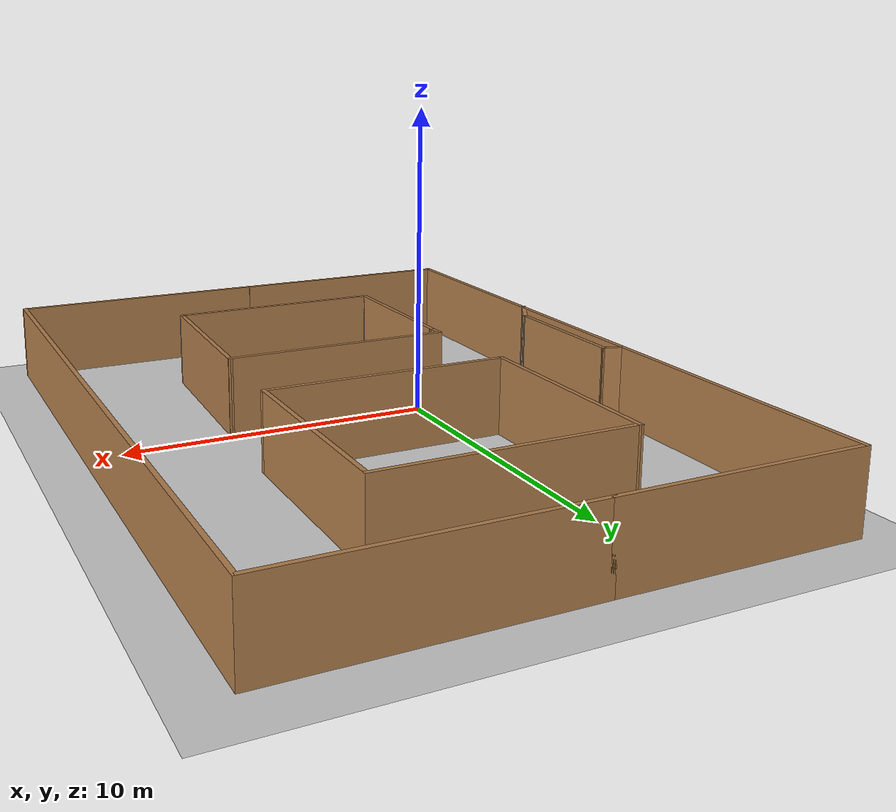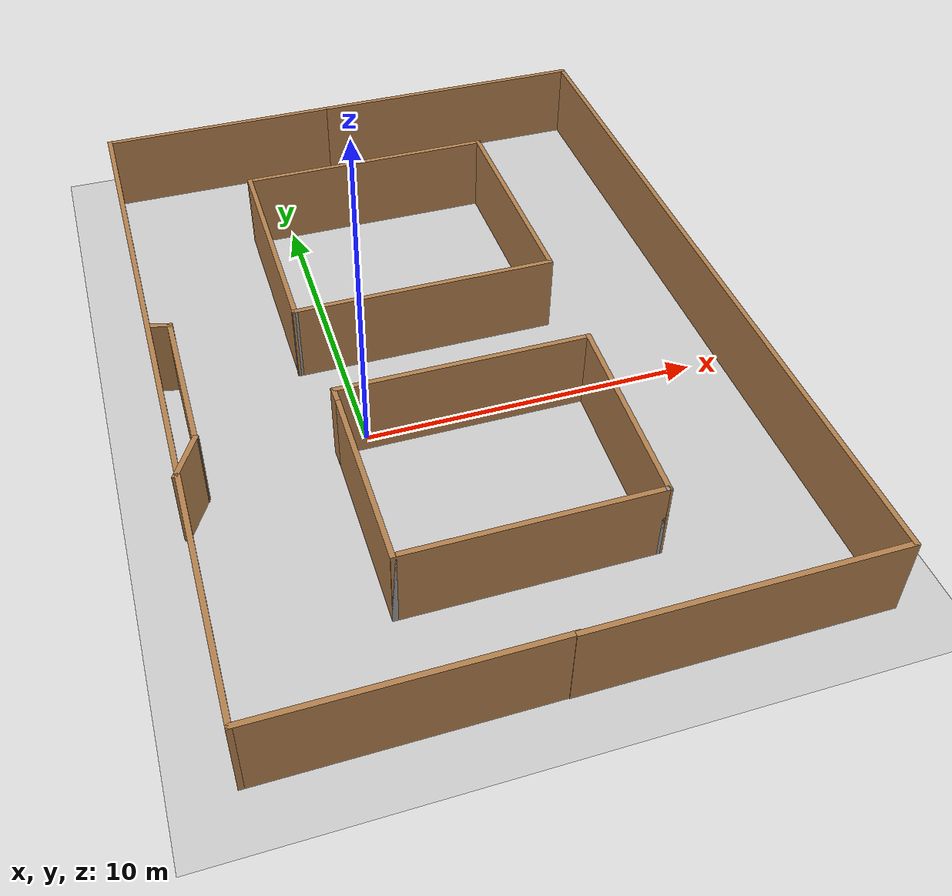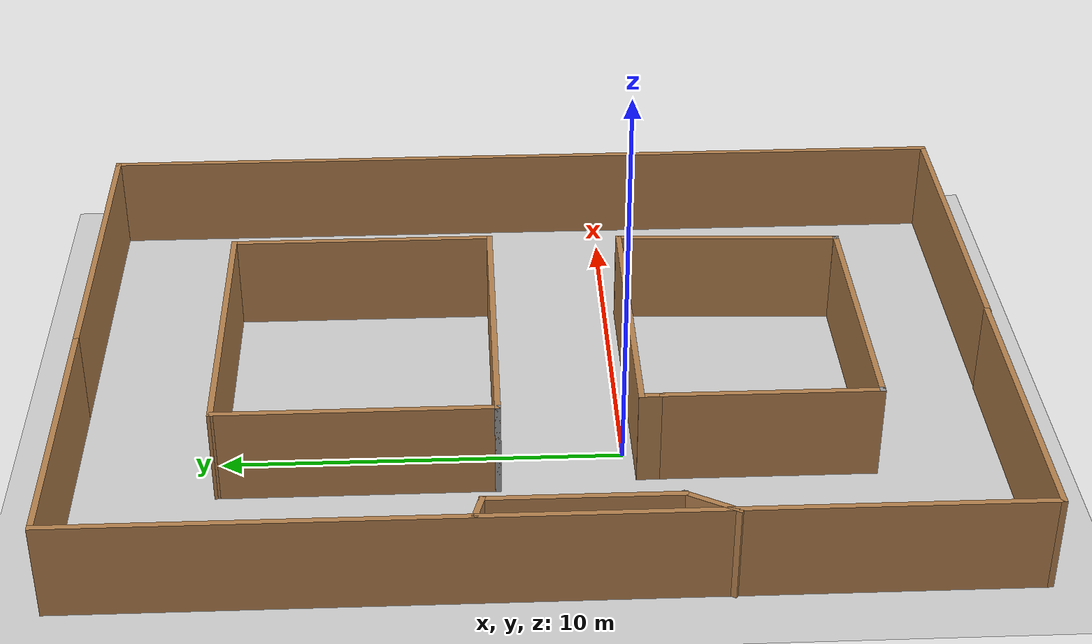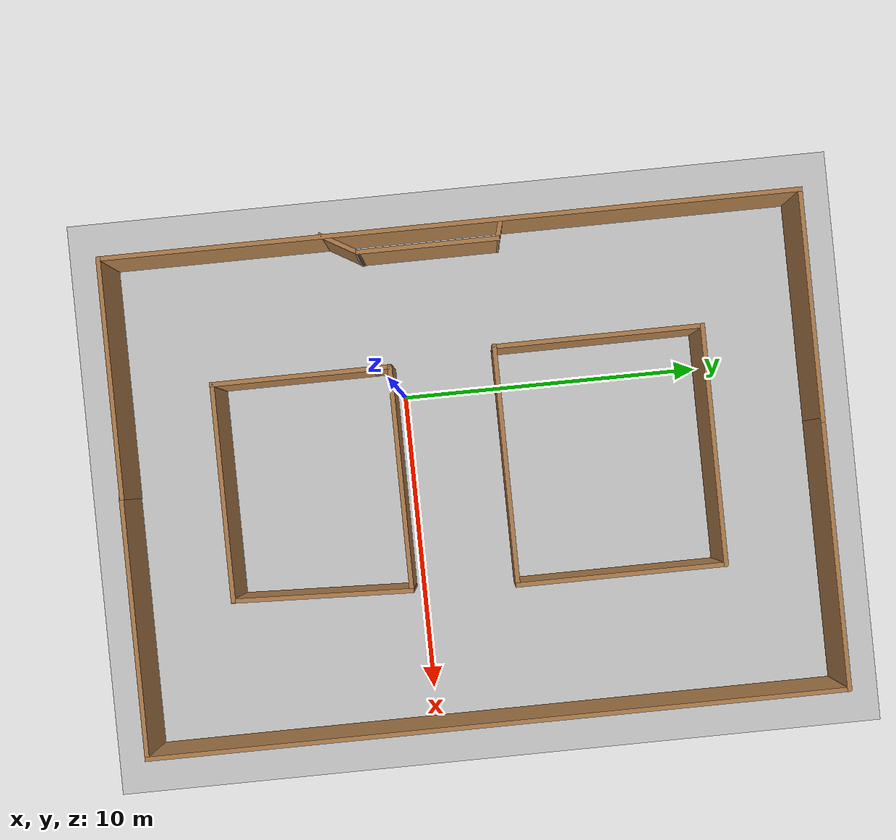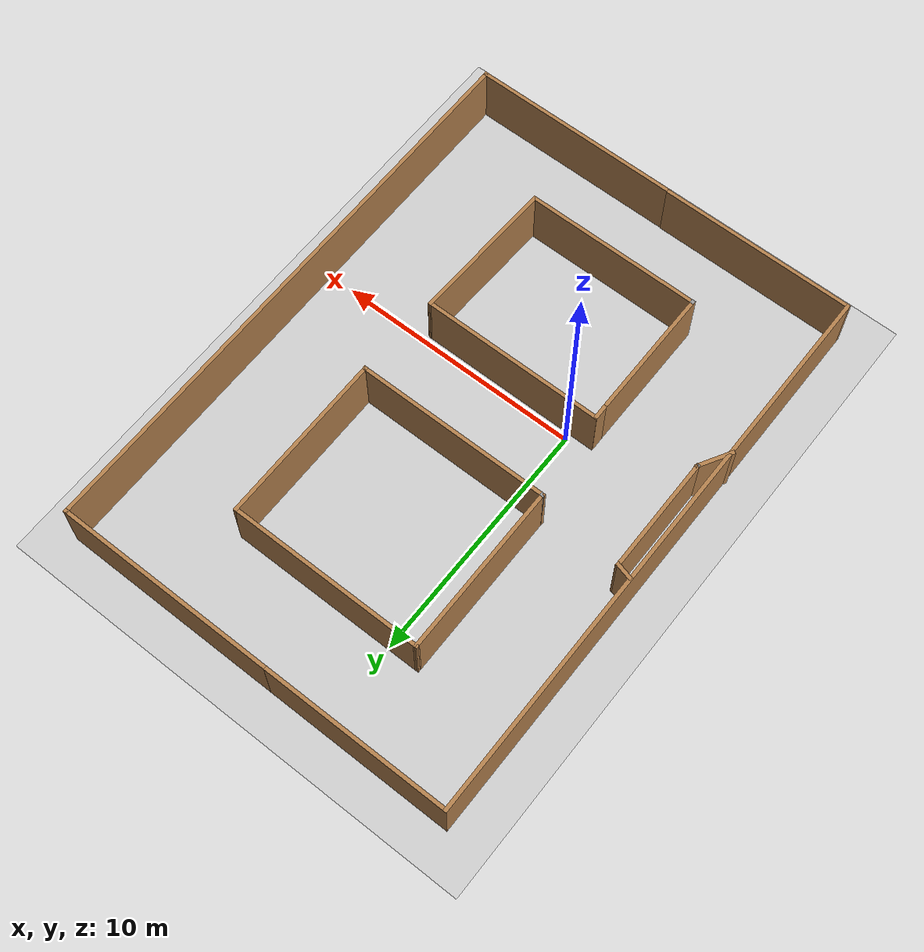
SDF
<sdf version='1.4'>
  <world name='default'>
    <!-- A global light source -->
    <include>
      <uri>model://sun</uri>
    </include>

    <!-- A ground plane -->
    <include>
      <uri>model://ground_plane</uri>
    </include>

    <physics type="ode">
      <real_time_update_rate>1000.0</real_time_update_rate>
      <max_step_size>0.001</max_step_size>
      <real_time_factor>1</real_time_factor>
      <ode>
        <solver>
          <type>quick</type>
          <iters>150</iters>
          <precon_iters>0</precon_iters>
          <sor>1.400000</sor>
          <use_dynamic_moi_rescaling>1</use_dynamic_moi_rescaling>
        </solver>
        <constraints>
          <cfm>0.00001</cfm>
          <erp>0.2</erp>
          <contact_max_correcting_vel>2000.000000</contact_max_correcting_vel>
          <contact_surface_layer>0.01000</contact_surface_layer>
        </constraints>
      </ode>
    </physics>

    <!-- Load world -->
    <include>
      <uri>model://double_wall</uri>
    </include>

    <scene>
      <ambient>0.4 0.4 0.4 1</ambient>
      <background>0.7 0.7 0.7 1</background>
      <shadows>true</shadows>
    </scene>

    <gui fullscreen='0'>
      <camera name='user_camera'>
        <pose>0.8 0.0 12.0 0 1.5708 0</pose>
        <view_controller>orbit</view_controller>
      </camera>
    </gui>
  </world>
</sdf>

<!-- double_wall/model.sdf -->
<sdf version='1.7'>
  <model name='double_wall'>
    <pose>2.8105 2.06376 0 0 -0 0</pose>
    <link name='Wall_10'>
      <collision name='Wall_10_Collision'>
        <geometry>
          <box>
            <size>8 0.15 2.5</size>
          </box>
        </geometry>
        <pose>0 0 1.25 0 -0 0</pose>
      </collision>
      <visual name='Wall_10_Visual'>
        <pose>0 0 1.25 0 -0 0</pose>
        <geometry>
          <box>
            <size>8 0.15 2.5</size>
          </box>
        </geometry>
        <material>
          <script>
            <uri>file://media/materials/scripts/gazebo.material</uri>
            <name>Gazebo/Wood</name>
          </script>
          <ambient>1 1 1 1</ambient>
        </material>
        <meta>
          <layer>0</layer>
        </meta>
      </visual>
      <pose>-0.13531 7.94023 0 0 -0 0</pose>
    </link>
    <link name='Wall_11'>
      <collision name='Wall_11_Collision'>
        <geometry>
          <box>
            <size>7 0.15 2.5</size>
          </box>
        </geometry>
        <pose>0 0 1.25 0 -0 0</pose>
      </collision>
      <visual name='Wall_11_Visual'>
        <pose>0 0 1.25 0 -0 0</pose>
        <geometry>
          <box>
            <size>7 0.15 2.5</size>
          </box>
        </geometry>
        <material>
          <script>
            <uri>file://media/materials/scripts/gazebo.material</uri>
            <name>Gazebo/Wood</name>
          </script>
          <ambient>1 1 1 1</ambient>
        </material>
        <meta>
          <layer>0</layer>
        </meta>
      </visual>
      <pose>3.78969 4.51523 0 0 -0 -1.5708</pose>
    </link>
    <link name='Wall_12'>
      <collision name='Wall_12_Collision'>
        <geometry>
          <box>
            <size>8 0.15 2.5</size>
          </box>
        </geometry>
        <pose>0 0 1.25 0 -0 0</pose>
      </collision>
      <visual name='Wall_12_Visual'>
        <pose>0 0 1.25 0 -0 0</pose>
        <geometry>
          <box>
            <size>8 0.15 2.5</size>
          </box>
        </geometry>
        <material>
          <script>
            <uri>file://media/materials/scripts/gazebo.material</uri>
            <name>Gazebo/Wood</name>
          </script>
          <ambient>1 1 1 1</ambient>
        </material>
        <meta>
          <layer>0</layer>
        </meta>
      </visual>
      <pose>-0.13531 1.09023 0 0 -0 3.14159</pose>
    </link>
    <link name='Wall_13'>
      <collision name='Wall_13_Collision'>
        <geometry>
          <box>
            <size>0.16 0.15 2.5</size>
          </box>
        </geometry>
        <pose>0 0 1.25 0 -0 0</pose>
      </collision>
      <visual name='Wall_13_Visual'>
        <pose>0 0 1.25 0 -0 0</pose>
        <geometry>
          <box>
            <size>0.16 0.15 2.5</size>
          </box>
        </geometry>
        <material>
          <script>
            <uri>file://media/materials/scripts/gazebo.material</uri>
            <name>Gazebo/Grey</name>
          </script>
          <ambient>1 1 1 1</ambient>
        </material>
        <meta>
          <layer>0</layer>
        </meta>
      </visual>
      <pose>-4.05531 1.09023 0 0 -0 0</pose>
    </link>
    <link name='Wall_14'>
      <collision name='Wall_14_Collision'>
        <geometry>
          <box>
            <size>7.00001 0.15 2.5</size>
          </box>
        </geometry>
        <pose>0 0 1.25 0 -0 0</pose>
      </collision>
      <visual name='Wall_14_Visual'>
        <pose>0 0 1.25 0 -0 0</pose>
        <geometry>
          <box>
            <size>7.00001 0.15 2.5</size>
          </box>
        </geometry>
        <material>
          <script>
            <uri>file://media/materials/scripts/gazebo.material</uri>
            <name>Gazebo/Wood</name>
          </script>
          <ambient>1 1 1 1</ambient>
        </material>
        <meta>
          <layer>0</layer>
        </meta>
      </visual>
      <pose>-4.05531 4.51523 0 0 -0 1.57226</pose>
    </link>
    <link name='Wall_16'>
      <collision name='Wall_16_Collision'>
        <geometry>
          <box>
            <size>0.6501 0.15 2.5</size>
          </box>
        </geometry>
        <pose>0 0 1.25 0 -0 0</pose>
      </collision>
      <visual name='Wall_16_Visual'>
        <pose>0 0 1.25 0 -0 0</pose>
        <geometry>
          <box>
            <size>0.6501 0.15 2.5</size>
          </box>
        </geometry>
        <material>
          <script>
            <uri>file://media/materials/scripts/gazebo.material</uri>
            <name>Gazebo/Wood</name>
          </script>
          <ambient>1 1 1 1</ambient>
        </material>
        <meta>
          <layer>0</layer>
        </meta>
      </visual>
      <pose>-3.73247 -2.64058 0 0 -0 -1.5508</pose>
    </link>
    <link name='Wall_17'>
      <collision name='Wall_17_Collision'>
        <geometry>
          <box>
            <size>5.5 0.15 2.5</size>
          </box>
        </geometry>
        <pose>0 0 1.25 0 -0 0</pose>
      </collision>
      <visual name='Wall_17_Visual'>
        <pose>0 0 1.25 0 -0 0</pose>
        <geometry>
          <box>
            <size>5.5 0.15 2.5</size>
          </box>
        </geometry>
        <material>
          <script>
            <uri>file://media/materials/scripts/gazebo.material</uri>
            <name>Gazebo/Wood</name>
          </script>
          <ambient>1 1 1 1</ambient>
        </material>
        <meta>
          <layer>0</layer>
        </meta>
      </visual>
      <pose>-3.72747 -5.56558 0 0 -0 -1.5708</pose>
    </link>
    <link name='Wall_18'>
      <collision name='Wall_18_Collision'>
        <geometry>
          <box>
            <size>0.16 0.15 2.5</size>
          </box>
        </geometry>
        <pose>0 0 1.25 0 -0 0</pose>
      </collision>
      <visual name='Wall_18_Visual'>
        <pose>0 0 1.25 0 -0 0</pose>
        <geometry>
          <box>
            <size>0.16 0.15 2.5</size>
          </box>
        </geometry>
        <material>
          <script>
            <uri>file://media/materials/scripts/gazebo.material</uri>
            <name>Gazebo/Grey</name>
          </script>
          <ambient>1 1 1 1</ambient>
        </material>
        <meta>
          <layer>0</layer>
        </meta>
      </visual>
      <pose>-3.72247 -8.24058 0 0 -0 0</pose>
    </link>
    <link name='Wall_19'>
      <collision name='Wall_19_Collision'>
        <geometry>
          <box>
            <size>7.25 0.15 2.5</size>
          </box>
        </geometry>
        <pose>0 0 1.25 0 -0 0</pose>
      </collision>
      <visual name='Wall_19_Visual'>
        <pose>0 0 1.25 0 -0 0</pose>
        <geometry>
          <box>
            <size>7.25 0.15 2.5</size>
          </box>
        </geometry>
        <material>
          <script>
            <uri>file://media/materials/scripts/gazebo.material</uri>
            <name>Gazebo/Wood</name>
          </script>
          <ambient>1 1 1 1</ambient>
        </material>
        <meta>
          <layer>0</layer>
        </meta>
      </visual>
      <pose>-0.167472 -8.24058 0 0 -0 0</pose>
    </link>
    <link name='Wall_2'>
      <collision name='Wall_2_Collision'>
        <geometry>
          <box>
            <size>8 0.15 2.5</size>
          </box>
        </geometry>
        <pose>0 0 1.25 0 -0 0</pose>
      </collision>
      <visual name='Wall_2_Visual'>
        <pose>0 0 1.25 0 -0 0</pose>
        <geometry>
          <box>
            <size>8 0.15 2.5</size>
          </box>
        </geometry>
        <material>
          <script>
            <uri>file://media/materials/scripts/gazebo.material</uri>
            <name>Gazebo/Wood</name>
          </script>
          <ambient>1 1 1 1</ambient>
        </material>
        <meta>
          <layer>0</layer>
        </meta>
      </visual>
      <pose>-4.26251 -11.5412 0 0 -0 3.14159</pose>
    </link>
    <link name='Wall_20'>
      <collision name='Wall_20_Collision'>
        <geometry>
          <box>
            <size>0.16 0.15 2.5</size>
          </box>
        </geometry>
        <pose>0 0 1.25 0 -0 0</pose>
      </collision>
      <visual name='Wall_20_Visual'>
        <pose>0 0 1.25 0 -0 0</pose>
        <geometry>
          <box>
            <size>0.16 0.15 2.5</size>
          </box>
        </geometry>
        <material>
          <script>
            <uri>file://media/materials/scripts/gazebo.material</uri>
            <name>Gazebo/Grey</name>
          </script>
          <ambient>1 1 1 1</ambient>
        </material>
        <meta>
          <layer>0</layer>
        </meta>
      </visual>
      <pose>3.38753 -8.24058 0 0 -0 0</pose>
    </link>
    <link name='Wall_21'>
      <collision name='Wall_21_Collision'>
        <geometry>
          <box>
            <size>6.00621 0.15 2.5</size>
          </box>
        </geometry>
        <pose>0 0 1.25 0 -0 0</pose>
      </collision>
      <visual name='Wall_21_Visual'>
        <pose>0 0 1.25 0 -0 0</pose>
        <geometry>
          <box>
            <size>6.00621 0.15 2.5</size>
          </box>
        </geometry>
        <material>
          <script>
            <uri>file://media/materials/scripts/gazebo.material</uri>
            <name>Gazebo/Wood</name>
          </script>
          <ambient>1 1 1 1</ambient>
        </material>
        <meta>
          <layer>0</layer>
        </meta>
      </visual>
      <pose>3.50992 -5.31449 0 0 -0 1.5307</pose>
    </link>
    <link name='Wall_22'>
      <collision name='Wall_22_Collision'>
        <geometry>
          <box>
            <size>7.5 0.15 2.5</size>
          </box>
        </geometry>
        <pose>0 0 1.25 0 -0 0</pose>
      </collision>
      <visual name='Wall_22_Visual'>
        <pose>0 0 1.25 0 -0 0</pose>
        <geometry>
          <box>
            <size>7.5 0.15 2.5</size>
          </box>
        </geometry>
        <material>
          <script>
            <uri>file://media/materials/scripts/gazebo.material</uri>
            <name>Gazebo/Wood</name>
          </script>
          <ambient>1 1 1 1</ambient>
        </material>
        <meta>
          <layer>0</layer>
        </meta>
      </visual>
      <pose>-0.056385 -2.38841 0 0 -0 3.14159</pose>
    </link>
    <link name='Wall_24'>
      <collision name='Wall_24_Collision'>
        <geometry>
          <box>
            <size>0.75 0.15 2.5</size>
          </box>
        </geometry>
        <pose>0 0 1.25 0 -0 0</pose>
      </collision>
      <visual name='Wall_24_Visual'>
        <pose>0 0 1.25 0 -0 0</pose>
        <geometry>
          <box>
            <size>0.75 0.15 2.5</size>
          </box>
        </geometry>
        <material>
          <script>
            <uri>file://media/materials/scripts/gazebo.material</uri>
            <name>Gazebo/Wood</name>
          </script>
          <ambient>1 1 1 1</ambient>
        </material>
        <meta>
          <layer>0</layer>
        </meta>
      </visual>
      <pose>-7.85981 1.62105 0 0 -0 -0.261799</pose>
    </link>
    <link name='Wall_25'>
      <collision name='Wall_25_Collision'>
        <geometry>
          <box>
            <size>4.75 0.15 2.5</size>
          </box>
        </geometry>
        <pose>0 0 1.25 0 -0 0</pose>
      </collision>
      <visual name='Wall_25_Visual'>
        <pose>0 0 1.25 0 -0 0</pose>
        <geometry>
          <box>
            <size>4.75 0.15 2.5</size>
          </box>
        </geometry>
        <material>
          <script>
            <uri>file://media/materials/scripts/gazebo.material</uri>
            <name>Gazebo/Wood</name>
          </script>
          <ambient>1 1 1 1</ambient>
        </material>
        <meta>
          <layer>0</layer>
        </meta>
      </visual>
      <pose>-7.57003 -0.756593 0 0 -0 -1.5708</pose>
    </link>
    <link name='Wall_26'>
      <collision name='Wall_26_Collision'>
        <geometry>
          <box>
            <size>0.16 0.15 2.5</size>
          </box>
        </geometry>
        <pose>0 0 1.25 0 -0 0</pose>
      </collision>
      <visual name='Wall_26_Visual'>
        <pose>0 0 1.25 0 -0 0</pose>
        <geometry>
          <box>
            <size>0.16 0.15 2.5</size>
          </box>
        </geometry>
        <material>
          <script>
            <uri>file://media/materials/scripts/gazebo.material</uri>
            <name>Gazebo/Grey</name>
          </script>
          <ambient>1 1 1 1</ambient>
        </material>
        <meta>
          <layer>0</layer>
        </meta>
      </visual>
      <pose>-7.56503 -3.05659 0 0 -0 0</pose>
    </link>
    <link name='Wall_27'>
      <collision name='Wall_27_Collision'>
        <geometry>
          <box>
            <size>1.5 0.15 2.5</size>
          </box>
        </geometry>
        <pose>0 0 1.25 0 -0 0</pose>
      </collision>
      <visual name='Wall_27_Visual'>
        <pose>0 0 1.25 0 -0 0</pose>
        <geometry>
          <box>
            <size>1.5 0.15 2.5</size>
          </box>
        </geometry>
        <material>
          <script>
            <uri>file://media/materials/scripts/gazebo.material</uri>
            <name>Gazebo/Wood</name>
          </script>
          <ambient>1 1 1 1</ambient>
        </material>
        <meta>
          <layer>0</layer>
        </meta>
      </visual>
      <pose>-7.89754 -3.64116 0 0 -0 -2.0944</pose>
    </link>
    <link name='Wall_3'>
      <collision name='Wall_3_Collision'>
        <geometry>
          <box>
            <size>23.25 0.15 2.5</size>
          </box>
        </geometry>
        <pose>0 0 1.25 0 -0 0</pose>
      </collision>
      <visual name='Wall_3_Visual'>
        <pose>0 0 1.25 0 -0 0</pose>
        <geometry>
          <box>
            <size>23.25 0.15 2.5</size>
          </box>
        </geometry>
        <material>
          <script>
            <uri>file://media/materials/scripts/gazebo.material</uri>
            <name>Gazebo/Wood</name>
          </script>
          <ambient>1 1 1 1</ambient>
        </material>
        <meta>
          <layer>0</layer>
        </meta>
      </visual>
      <pose>-8.18751 0.008756 0 0 -0 1.5708</pose>
    </link>
    <link name='Wall_4'>
      <collision name='Wall_4_Collision'>
        <geometry>
          <box>
            <size>7.75 0.15 2.5</size>
          </box>
        </geometry>
        <pose>0 0 1.25 0 -0 0</pose>
      </collision>
      <visual name='Wall_4_Visual'>
        <pose>0 0 1.25 0 -0 0</pose>
        <geometry>
          <box>
            <size>7.75 0.15 2.5</size>
          </box>
        </geometry>
        <material>
          <script>
            <uri>file://media/materials/scripts/gazebo.material</uri>
            <name>Gazebo/Wood</name>
          </script>
          <ambient>1 1 1 1</ambient>
        </material>
        <meta>
          <layer>0</layer>
        </meta>
      </visual>
      <pose>-4.38751 11.5588 0 0 -0 0</pose>
    </link>
    <link name='Wall_5'>
      <collision name='Wall_5_Collision'>
        <geometry>
          <box>
            <size>9 0.15 2.5</size>
          </box>
        </geometry>
        <pose>0 0 1.25 0 -0 0</pose>
      </collision>
      <visual name='Wall_5_Visual'>
        <pose>0 0 1.25 0 -0 0</pose>
        <geometry>
          <box>
            <size>9 0.15 2.5</size>
          </box>
        </geometry>
        <material>
          <script>
            <uri>file://media/materials/scripts/gazebo.material</uri>
            <name>Gazebo/Wood</name>
          </script>
          <ambient>1 1 1 1</ambient>
        </material>
        <meta>
          <layer>0</layer>
        </meta>
      </visual>
      <pose>3.83749 11.5588 0 0 -0 0</pose>
    </link>
    <link name='Wall_6'>
      <collision name='Wall_6_Collision'>
        <geometry>
          <box>
            <size>23.2675 0.15 2.5</size>
          </box>
        </geometry>
        <pose>0 0 1.25 0 -0 0</pose>
      </collision>
      <visual name='Wall_6_Visual'>
        <pose>0 0 1.25 0 -0 0</pose>
        <geometry>
          <box>
            <size>23.2675 0.15 2.5</size>
          </box>
        </geometry>
        <material>
          <script>
            <uri>file://media/materials/scripts/gazebo.material</uri>
            <name>Gazebo/Wood</name>
          </script>
          <ambient>1 1 1 1</ambient>
        </material>
        <meta>
          <layer>0</layer>
        </meta>
      </visual>
      <pose>8.26248 0 0 0 -0 -1.5708</pose>
    </link>
    <link name='Wall_7'>
      <collision name='Wall_7_Collision'>
        <geometry>
          <box>
            <size>8.75 0.15 2.5</size>
          </box>
        </geometry>
        <pose>0 0 1.25 0 -0 0</pose>
      </collision>
      <visual name='Wall_7_Visual'>
        <pose>0 0 1.25 0 -0 0</pose>
        <geometry>
          <box>
            <size>8.75 0.15 2.5</size>
          </box>
        </geometry>
        <material>
          <script>
            <uri>file://media/materials/scripts/gazebo.material</uri>
            <name>Gazebo/Wood</name>
          </script>
          <ambient>1 1 1 1</ambient>
        </material>
        <meta>
          <layer>0</layer>
        </meta>
      </visual>
      <pose>3.96249 -11.5588 0 0 -0 3.14159</pose>
    </link>
    <static>1</static>
  </model>
</sdf>
